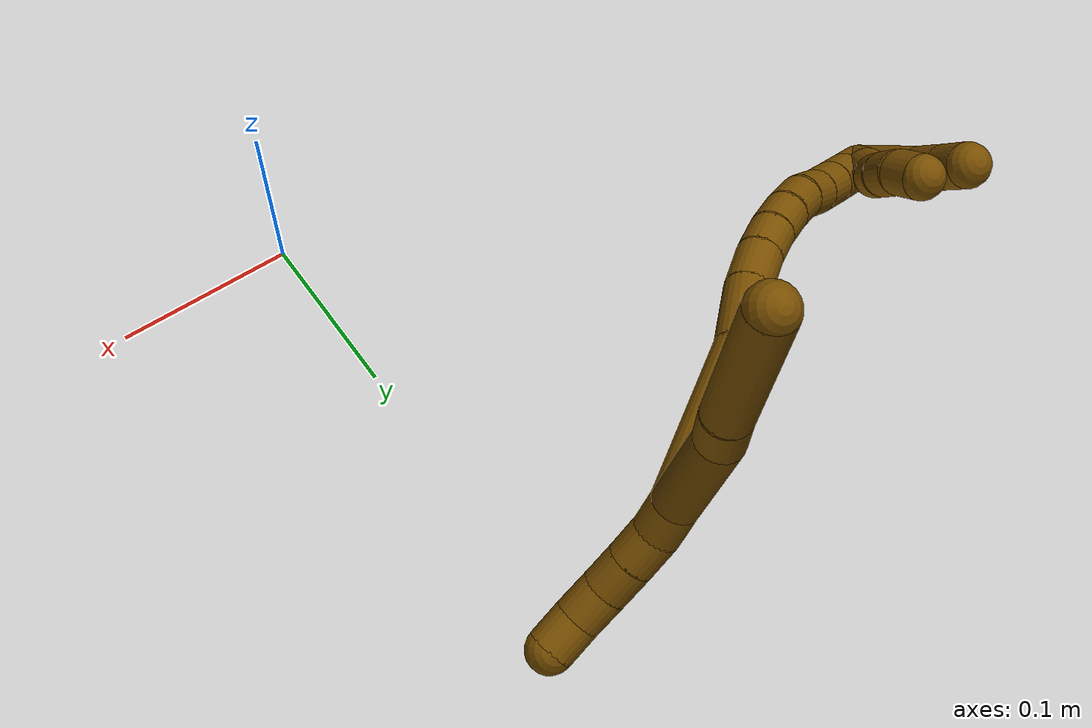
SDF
<sdf version="1.7">
 <world name="default">
  <model name="12">
   <static>0</static>
   <link name="12">
    <collision name="collision-cylinder-e_1_2_8">
     <pose>-0.01328 0.001871 -0.023569 -3.06236 -0.511749 2.84085</pose>
     <geometry><cylinder><radius>0.0125</radius><length>0.054235</length></cylinder></geometry>
     <surface>
      <friction><ode><mu>1.16</mu><mu2>1.16</mu2><slip1>0</slip1><slip2>0</slip2></ode></friction>
      <contact><ode><kp>1e+06</kp><kd>1</kd><max_vel>0</max_vel><min_depth>0.001</min_depth></ode></contact>
     </surface>
    </collision>
    <visual name="visual-cylinder-e_1_2_8">
     <pose>-0.01328 0.001871 -0.023569 -3.06236 -0.511749 2.84085</pose>
     <geometry><cylinder><radius>0.0125</radius><length>0.054235</length></cylinder></geometry>
     <material><ambient>0.466667 0.301961 0 1</ambient></material>
    </visual>
    <collision name="collision-cylinder-e_2_8_9">
     <pose>-0.030727 0.007073 -0.05656 -2.80184 -0.395142 1.72467</pose>
     <geometry><cylinder><radius>0.0125</radius><length>0.021653</length></cylinder></geometry>
     <surface>
      <friction><ode><mu>1.16</mu><mu2>1.16</mu2><slip1>0</slip1><slip2>0</slip2></ode></friction>
      <contact><ode><kp>1e+06</kp><kd>1</kd><max_vel>0</max_vel><min_depth>0.001</min_depth></ode></contact>
     </surface>
    </collision>
    <visual name="visual-cylinder-e_2_8_9">
     <pose>-0.030727 0.007073 -0.05656 -2.80184 -0.395142 1.72467</pose>
     <geometry><cylinder><radius>0.0125</radius><length>0.021653</length></cylinder></geometry>
     <material><ambient>0.466667 0.301961 0 1</ambient></material>
    </visual>
    <collision name="collision-cylinder-e_3_9_6">
     <pose>-0.051667 0.018719 -0.09796 -2.88717 -0.469717 2.15979</pose>
     <geometry><cylinder><radius>0.0125</radius><length>0.074112</length></cylinder></geometry>
     <surface>
      <friction><ode><mu>1.16</mu><mu2>1.16</mu2><slip1>0</slip1><slip2>0</slip2></ode></friction>
      <contact><ode><kp>1e+06</kp><kd>1</kd><max_vel>0</max_vel><min_depth>0.001</min_depth></ode></contact>
     </surface>
    </collision>
    <visual name="visual-cylinder-e_3_9_6">
     <pose>-0.051667 0.018719 -0.09796 -2.88717 -0.469717 2.15979</pose>
     <geometry><cylinder><radius>0.0125</radius><length>0.074112</length></cylinder></geometry>
     <material><ambient>0.466667 0.301961 0 1</ambient></material>
    </visual>
    <collision name="collision-cylinder-e_1_2_10">
     <pose>0.006962 0.000639 0.00715 -0.089165 0.770058 -0.036155</pose>
     <geometry><cylinder><radius>0.0125</radius><length>0.02</length></cylinder></geometry>
     <surface>
      <friction><ode><mu>1.16</mu><mu2>1.16</mu2><slip1>0</slip1><slip2>0</slip2></ode></friction>
      <contact><ode><kp>1e+06</kp><kd>1</kd><max_vel>0</max_vel><min_depth>0.001</min_depth></ode></contact>
     </surface>
    </collision>
    <visual name="visual-cylinder-e_1_2_10">
     <pose>0.006962 0.000639 0.00715 -0.089165 0.770058 -0.036155</pose>
     <geometry><cylinder><radius>0.0125</radius><length>0.02</length></cylinder></geometry>
     <material><ambient>0.466667 0.301961 0 1</ambient></material>
    </visual>
    <collision name="collision-cylinder-e_2_10_11">
     <pose>0.021445 0.004081 0.020265 -0.439279 0.851322 -0.201739</pose>
     <geometry><cylinder><radius>0.0125</radius><length>0.02</length></cylinder></geometry>
     <surface>
      <friction><ode><mu>1.16</mu><mu2>1.16</mu2><slip1>0</slip1><slip2>0</slip2></ode></friction>
      <contact><ode><kp>1e+06</kp><kd>1</kd><max_vel>0</max_vel><min_depth>0.001</min_depth></ode></contact>
     </surface>
    </collision>
    <visual name="visual-cylinder-e_2_10_11">
     <pose>0.021445 0.004081 0.020265 -0.439279 0.851322 -0.201739</pose>
     <geometry><cylinder><radius>0.0125</radius><length>0.02</length></cylinder></geometry>
     <material><ambient>0.466667 0.301961 0 1</ambient></material>
    </visual>
    <collision name="collision-cylinder-e_3_11_12">
     <pose>0.036414 0.009932 0.032165 -0.474462 0.840173 -0.215164</pose>
     <geometry><cylinder><radius>0.0125</radius><length>0.02</length></cylinder></geometry>
     <surface>
      <friction><ode><mu>1.16</mu><mu2>1.16</mu2><slip1>0</slip1><slip2>0</slip2></ode></friction>
      <contact><ode><kp>1e+06</kp><kd>1</kd><max_vel>0</max_vel><min_depth>0.001</min_depth></ode></contact>
     </surface>
    </collision>
    <visual name="visual-cylinder-e_3_11_12">
     <pose>0.036414 0.009932 0.032165 -0.474462 0.840173 -0.215164</pose>
     <geometry><cylinder><radius>0.0125</radius><length>0.02</length></cylinder></geometry>
     <material><ambient>0.466667 0.301961 0 1</ambient></material>
    </visual>
    <collision name="collision-cylinder-e_4_12_13">
     <pose>0.051802 0.016936 0.042718 -0.708283 0.91738 -0.36118</pose>
     <geometry><cylinder><radius>0.0125</radius><length>0.02</length></cylinder></geometry>
     <surface>
      <friction><ode><mu>1.16</mu><mu2>1.16</mu2><slip1>0</slip1><slip2>0</slip2></ode></friction>
      <contact><ode><kp>1e+06</kp><kd>1</kd><max_vel>0</max_vel><min_depth>0.001</min_depth></ode></contact>
     </surface>
    </collision>
    <visual name="visual-cylinder-e_4_12_13">
     <pose>0.051802 0.016936 0.042718 -0.708283 0.91738 -0.36118</pose>
     <geometry><cylinder><radius>0.0125</radius><length>0.02</length></cylinder></geometry>
     <material><ambient>0.466667 0.301961 0 1</ambient></material>
    </visual>
    <collision name="collision-cylinder-e_5_13_5">
     <pose>0.068189 0.02545 0.050137 -1.01983 1.00605 -0.597046</pose>
     <geometry><cylinder><radius>0.0125</radius><length>0.02</length></cylinder></geometry>
     <surface>
      <friction><ode><mu>1.16</mu><mu2>1.16</mu2><slip1>0</slip1><slip2>0</slip2></ode></friction>
      <contact><ode><kp>1e+06</kp><kd>1</kd><max_vel>0</max_vel><min_depth>0.001</min_depth></ode></contact>
     </surface>
    </collision>
    <visual name="visual-cylinder-e_5_13_5">
     <pose>0.068189 0.02545 0.050137 -1.01983 1.00605 -0.597046</pose>
     <geometry><cylinder><radius>0.0125</radius><length>0.02</length></cylinder></geometry>
     <material><ambient>0.466667 0.301961 0 1</ambient></material>
    </visual>
    <collision name="collision-cylinder-e_1_2_14">
     <pose>-0.041373 -0.013852 0.010172 0.937407 -1.1771 -0.651813</pose>
     <geometry><cylinder><radius>0.0125</radius><length>0.089602</length></cylinder></geometry>
     <surface>
      <friction><ode><mu>1.16</mu><mu2>1.16</mu2><slip1>0</slip1><slip2>0</slip2></ode></friction>
      <contact><ode><kp>1e+06</kp><kd>1</kd><max_vel>0</max_vel><min_depth>0.001</min_depth></ode></contact>
     </surface>
    </collision>
    <visual name="visual-cylinder-e_1_2_14">
     <pose>-0.041373 -0.013852 0.010172 0.937407 -1.1771 -0.651813</pose>
     <geometry><cylinder><radius>0.0125</radius><length>0.089602</length></cylinder></geometry>
     <material><ambient>0.466667 0.301961 0 1</ambient></material>
    </visual>
    <collision name="collision-cylinder-e_2_14_15">
     <pose>-0.100134 -0.032221 0.030793 0.407968 -0.991125 -0.222714</pose>
     <geometry><cylinder><radius>0.0125</radius><length>0.041563</length></cylinder></geometry>
     <surface>
      <friction><ode><mu>1.16</mu><mu2>1.16</mu2><slip1>0</slip1><slip2>0</slip2></ode></friction>
      <contact><ode><kp>1e+06</kp><kd>1</kd><max_vel>0</max_vel><min_depth>0.001</min_depth></ode></contact>
     </surface>
    </collision>
    <visual name="visual-cylinder-e_2_14_15">
     <pose>-0.100134 -0.032221 0.030793 0.407968 -0.991125 -0.222714</pose>
     <geometry><cylinder><radius>0.0125</radius><length>0.041563</length></cylinder></geometry>
     <material><ambient>0.466667 0.301961 0 1</ambient></material>
    </visual>
    <collision name="collision-cylinder-e_3_15_16">
     <pose>-0.128419 -0.040817 0.04675 0.63754 -1.00938 -0.360658</pose>
     <geometry><cylinder><radius>0.0125</radius><length>0.025751</length></cylinder></geometry>
     <surface>
      <friction><ode><mu>1.16</mu><mu2>1.16</mu2><slip1>0</slip1><slip2>0</slip2></ode></friction>
      <contact><ode><kp>1e+06</kp><kd>1</kd><max_vel>0</max_vel><min_depth>0.001</min_depth></ode></contact>
     </surface>
    </collision>
    <visual name="visual-cylinder-e_3_15_16">
     <pose>-0.128419 -0.040817 0.04675 0.63754 -1.00938 -0.360658</pose>
     <geometry><cylinder><radius>0.0125</radius><length>0.025751</length></cylinder></geometry>
     <material><ambient>0.466667 0.301961 0 1</ambient></material>
    </visual>
    <collision name="collision-cylinder-e_4_16_17">
     <pose>-0.147573 -0.049179 0.056524 0.787256 -0.938755 -0.415199</pose>
     <geometry><cylinder><radius>0.0125</radius><length>0.020462</length></cylinder></geometry>
     <surface>
      <friction><ode><mu>1.16</mu><mu2>1.16</mu2><slip1>0</slip1><slip2>0</slip2></ode></friction>
      <contact><ode><kp>1e+06</kp><kd>1</kd><max_vel>0</max_vel><min_depth>0.001</min_depth></ode></contact>
     </surface>
    </collision>
    <visual name="visual-cylinder-e_4_16_17">
     <pose>-0.147573 -0.049179 0.056524 0.787256 -0.938755 -0.415199</pose>
     <geometry><cylinder><radius>0.0125</radius><length>0.020462</length></cylinder></geometry>
     <material><ambient>0.466667 0.301961 0 1</ambient></material>
    </visual>
    <collision name="collision-cylinder-e_5_17_18">
     <pose>-0.163343 -0.058618 0.065445 0.836532 -0.824672 -0.384062</pose>
     <geometry><cylinder><radius>0.0125</radius><length>0.020469</length></cylinder></geometry>
     <surface>
      <friction><ode><mu>1.16</mu><mu2>1.16</mu2><slip1>0</slip1><slip2>0</slip2></ode></friction>
      <contact><ode><kp>1e+06</kp><kd>1</kd><max_vel>0</max_vel><min_depth>0.001</min_depth></ode></contact>
     </surface>
    </collision>
    <visual name="visual-cylinder-e_5_17_18">
     <pose>-0.163343 -0.058618 0.065445 0.836532 -0.824672 -0.384062</pose>
     <geometry><cylinder><radius>0.0125</radius><length>0.020469</length></cylinder></geometry>
     <material><ambient>0.466667 0.301961 0 1</ambient></material>
    </visual>
    <collision name="collision-cylinder-e_6_18_19">
     <pose>-0.17775 -0.069821 0.075529 0.839061 -0.703358 -0.324435</pose>
     <geometry><cylinder><radius>0.0125</radius><length>0.021311</length></cylinder></geometry>
     <surface>
      <friction><ode><mu>1.16</mu><mu2>1.16</mu2><slip1>0</slip1><slip2>0</slip2></ode></friction>
      <contact><ode><kp>1e+06</kp><kd>1</kd><max_vel>0</max_vel><min_depth>0.001</min_depth></ode></contact>
     </surface>
    </collision>
    <visual name="visual-cylinder-e_6_18_19">
     <pose>-0.17775 -0.069821 0.075529 0.839061 -0.703358 -0.324435</pose>
     <geometry><cylinder><radius>0.0125</radius><length>0.021311</length></cylinder></geometry>
     <material><ambient>0.466667 0.301961 0 1</ambient></material>
    </visual>
    <collision name="collision-cylinder-e_7_19_20">
     <pose>-0.189168 -0.082831 0.086594 0.890568 -0.46786 -0.226478</pose>
     <geometry><cylinder><radius>0.0125</radius><length>0.020073</length></cylinder></geometry>
     <surface>
      <friction><ode><mu>1.16</mu><mu2>1.16</mu2><slip1>0</slip1><slip2>0</slip2></ode></friction>
      <contact><ode><kp>1e+06</kp><kd>1</kd><max_vel>0</max_vel><min_depth>0.001</min_depth></ode></contact>
     </surface>
    </collision>
    <visual name="visual-cylinder-e_7_19_20">
     <pose>-0.189168 -0.082831 0.086594 0.890568 -0.46786 -0.226478</pose>
     <geometry><cylinder><radius>0.0125</radius><length>0.020073</length></cylinder></geometry>
     <material><ambient>0.466667 0.301961 0 1</ambient></material>
    </visual>
    <collision name="collision-cylinder-e_8_20_21">
     <pose>-0.199152 -0.096566 0.097589 0.901082 -0.563632 -0.278286</pose>
     <geometry><cylinder><radius>0.0125</radius><length>0.020432</length></cylinder></geometry>
     <surface>
      <friction><ode><mu>1.16</mu><mu2>1.16</mu2><slip1>0</slip1><slip2>0</slip2></ode></friction>
      <contact><ode><kp>1e+06</kp><kd>1</kd><max_vel>0</max_vel><min_depth>0.001</min_depth></ode></contact>
     </surface>
    </collision>
    <visual name="visual-cylinder-e_8_20_21">
     <pose>-0.199152 -0.096566 0.097589 0.901082 -0.563632 -0.278286</pose>
     <geometry><cylinder><radius>0.0125</radius><length>0.020432</length></cylinder></geometry>
     <material><ambient>0.466667 0.301961 0 1</ambient></material>
    </visual>
    <collision name="collision-cylinder-e_9_21_22">
     <pose>-0.209972 -0.109862 0.108322 0.881931 -0.565323 -0.272453</pose>
     <geometry><cylinder><radius>0.0125</radius><length>0.020019</length></cylinder></geometry>
     <surface>
      <friction><ode><mu>1.16</mu><mu2>1.16</mu2><slip1>0</slip1><slip2>0</slip2></ode></friction>
      <contact><ode><kp>1e+06</kp><kd>1</kd><max_vel>0</max_vel><min_depth>0.001</min_depth></ode></contact>
     </surface>
    </collision>
    <visual name="visual-cylinder-e_9_21_22">
     <pose>-0.209972 -0.109862 0.108322 0.881931 -0.565323 -0.272453</pose>
     <geometry><cylinder><radius>0.0125</radius><length>0.020019</length></cylinder></geometry>
     <material><ambient>0.466667 0.301961 0 1</ambient></material>
    </visual>
    <collision name="collision-cylinder-e_10_22_1">
     <pose>-0.220798 -0.122934 0.119216 0.870238 -0.567861 -0.269643</pose>
     <geometry><cylinder><radius>0.0125</radius><length>0.020319</length></cylinder></geometry>
     <surface>
      <friction><ode><mu>1.16</mu><mu2>1.16</mu2><slip1>0</slip1><slip2>0</slip2></ode></friction>
      <contact><ode><kp>1e+06</kp><kd>1</kd><max_vel>0</max_vel><min_depth>0.001</min_depth></ode></contact>
     </surface>
    </collision>
    <visual name="visual-cylinder-e_10_22_1">
     <pose>-0.220798 -0.122934 0.119216 0.870238 -0.567861 -0.269643</pose>
     <geometry><cylinder><radius>0.0125</radius><length>0.020319</length></cylinder></geometry>
     <material><ambient>0.466667 0.301961 0 1</ambient></material>
    </visual>
    <collision name="collision-cylinder-e_1_1_23">
     <pose>-0.222738 -0.127601 0.11557 -2.93927 0.360146 -2.12429</pose>
     <geometry><cylinder><radius>0.0125</radius><length>0.02</length></cylinder></geometry>
     <surface>
      <friction><ode><mu>1.16</mu><mu2>1.16</mu2><slip1>0</slip1><slip2>0</slip2></ode></friction>
      <contact><ode><kp>1e+06</kp><kd>1</kd><max_vel>0</max_vel><min_depth>0.001</min_depth></ode></contact>
     </surface>
    </collision>
    <visual name="visual-cylinder-e_1_1_23">
     <pose>-0.222738 -0.127601 0.11557 -2.93927 0.360146 -2.12429</pose>
     <geometry><cylinder><radius>0.0125</radius><length>0.02</length></cylinder></geometry>
     <material><ambient>0.466667 0.301961 0 1</ambient></material>
    </visual>
    <collision name="collision-cylinder-e_2_23_24">
     <pose>-0.214998 -0.124167 0.097469 -2.96941 0.435237 -2.39735</pose>
     <geometry><cylinder><radius>0.0125</radius><length>0.02</length></cylinder></geometry>
     <surface>
      <friction><ode><mu>1.16</mu><mu2>1.16</mu2><slip1>0</slip1><slip2>0</slip2></ode></friction>
      <contact><ode><kp>1e+06</kp><kd>1</kd><max_vel>0</max_vel><min_depth>0.001</min_depth></ode></contact>
     </surface>
    </collision>
    <visual name="visual-cylinder-e_2_23_24">
     <pose>-0.214998 -0.124167 0.097469 -2.96941 0.435237 -2.39735</pose>
     <geometry><cylinder><radius>0.0125</radius><length>0.02</length></cylinder></geometry>
     <material><ambient>0.466667 0.301961 0 1</ambient></material>
    </visual>
    <collision name="collision-cylinder-e_3_24_25">
     <pose>-0.20841 -0.120116 0.079147 -2.88157 0.239465 -1.48766</pose>
     <geometry><cylinder><radius>0.0125</radius><length>0.02</length></cylinder></geometry>
     <surface>
      <friction><ode><mu>1.16</mu><mu2>1.16</mu2><slip1>0</slip1><slip2>0</slip2></ode></friction>
      <contact><ode><kp>1e+06</kp><kd>1</kd><max_vel>0</max_vel><min_depth>0.001</min_depth></ode></contact>
     </surface>
    </collision>
    <visual name="visual-cylinder-e_3_24_25">
     <pose>-0.20841 -0.120116 0.079147 -2.88157 0.239465 -1.48766</pose>
     <geometry><cylinder><radius>0.0125</radius><length>0.02</length></cylinder></geometry>
     <material><ambient>0.466667 0.301961 0 1</ambient></material>
    </visual>
    <collision name="collision-cylinder-e_4_25_26">
     <pose>-0.204269 -0.116745 0.059956 -3.05273 0.177862 -2.21651</pose>
     <geometry><cylinder><radius>0.0125</radius><length>0.02</length></cylinder></geometry>
     <surface>
      <friction><ode><mu>1.16</mu><mu2>1.16</mu2><slip1>0</slip1><slip2>0</slip2></ode></friction>
      <contact><ode><kp>1e+06</kp><kd>1</kd><max_vel>0</max_vel><min_depth>0.001</min_depth></ode></contact>
     </surface>
    </collision>
    <visual name="visual-cylinder-e_4_25_26">
     <pose>-0.204269 -0.116745 0.059956 -3.05273 0.177862 -2.21651</pose>
     <geometry><cylinder><radius>0.0125</radius><length>0.02</length></cylinder></geometry>
     <material><ambient>0.466667 0.301961 0 1</ambient></material>
    </visual>
    <collision name="collision-cylinder-e_5_26_4">
     <pose>-0.199483 -0.117653 0.040786 2.95361 0.306404 2.04537</pose>
     <geometry><cylinder><radius>0.0125</radius><length>0.02</length></cylinder></geometry>
     <surface>
      <friction><ode><mu>1.16</mu><mu2>1.16</mu2><slip1>0</slip1><slip2>0</slip2></ode></friction>
      <contact><ode><kp>1e+06</kp><kd>1</kd><max_vel>0</max_vel><min_depth>0.001</min_depth></ode></contact>
     </surface>
    </collision>
    <visual name="visual-cylinder-e_5_26_4">
     <pose>-0.199483 -0.117653 0.040786 2.95361 0.306404 2.04537</pose>
     <geometry><cylinder><radius>0.0125</radius><length>0.02</length></cylinder></geometry>
     <material><ambient>0.466667 0.301961 0 1</ambient></material>
    </visual>
    <collision name="collision-cylinder-e_1_1_27">
     <pose>-0.222591 -0.136905 0.10267 2.81709 0.156405 0.89297</pose>
     <geometry><cylinder><radius>0.0125</radius><length>0.047142</length></cylinder></geometry>
     <surface>
      <friction><ode><mu>1.16</mu><mu2>1.16</mu2><slip1>0</slip1><slip2>0</slip2></ode></friction>
      <contact><ode><kp>1e+06</kp><kd>1</kd><max_vel>0</max_vel><min_depth>0.001</min_depth></ode></contact>
     </surface>
    </collision>
    <visual name="visual-cylinder-e_1_1_27">
     <pose>-0.222591 -0.136905 0.10267 2.81709 0.156405 0.89297</pose>
     <geometry><cylinder><radius>0.0125</radius><length>0.047142</length></cylinder></geometry>
     <material><ambient>0.466667 0.301961 0 1</ambient></material>
    </visual>
    <collision name="collision-cylinder-e_2_27_28">
     <pose>-0.216233 -0.144401 0.066912 3.13634 0.193731 3.08758</pose>
     <geometry><cylinder><radius>0.0125</radius><length>0.027902</length></cylinder></geometry>
     <surface>
      <friction><ode><mu>1.16</mu><mu2>1.16</mu2><slip1>0</slip1><slip2>0</slip2></ode></friction>
      <contact><ode><kp>1e+06</kp><kd>1</kd><max_vel>0</max_vel><min_depth>0.001</min_depth></ode></contact>
     </surface>
    </collision>
    <visual name="visual-cylinder-e_2_27_28">
     <pose>-0.216233 -0.144401 0.066912 3.13634 0.193731 3.08758</pose>
     <geometry><cylinder><radius>0.0125</radius><length>0.027902</length></cylinder></geometry>
     <material><ambient>0.466667 0.301961 0 1</ambient></material>
    </visual>
    <collision name="collision-cylinder-e_3_28_3">
     <pose>-0.211139 -0.143989 0.040988 -3.10209 0.194251 -2.74152</pose>
     <geometry><cylinder><radius>0.0125</radius><length>0.024957</length></cylinder></geometry>
     <surface>
      <friction><ode><mu>1.16</mu><mu2>1.16</mu2><slip1>0</slip1><slip2>0</slip2></ode></friction>
      <contact><ode><kp>1e+06</kp><kd>1</kd><max_vel>0</max_vel><min_depth>0.001</min_depth></ode></contact>
     </surface>
    </collision>
    <visual name="visual-cylinder-e_3_28_3">
     <pose>-0.211139 -0.143989 0.040988 -3.10209 0.194251 -2.74152</pose>
     <geometry><cylinder><radius>0.0125</radius><length>0.024957</length></cylinder></geometry>
     <material><ambient>0.466667 0.301961 0 1</ambient></material>
    </visual>
    <collision name="collision-sphere-3">
     <pose>-0.20873 -0.143505 0.028754 0 -0 0</pose>
     <geometry><sphere><radius>0.0125</radius></sphere></geometry>
     <surface>
      <friction><ode><mu>1.16</mu><mu2>1.16</mu2><slip1>0</slip1><slip2>0</slip2></ode></friction>
      <contact><ode><kp>1e+06</kp><kd>1</kd><max_vel>0</max_vel><min_depth>0.001</min_depth></ode></contact>
     </surface>
    </collision>
    <visual name="visual-sphere-3">
     <pose>-0.20873 -0.143505 0.028754 0 -0 0</pose>
     <geometry><sphere><radius>0.0125</radius></sphere></geometry>
     <material><ambient>0.466667 0.301961 0 1</ambient></material>
    </visual>
    <collision name="collision-sphere-28">
     <pose>-0.213547 -0.144472 0.053222 0 -0 0</pose>
     <geometry><sphere><radius>0.0125</radius></sphere></geometry>
     <surface>
      <friction><ode><mu>1.16</mu><mu2>1.16</mu2><slip1>0</slip1><slip2>0</slip2></ode></friction>
      <contact><ode><kp>1e+06</kp><kd>1</kd><max_vel>0</max_vel><min_depth>0.001</min_depth></ode></contact>
     </surface>
    </collision>
    <visual name="visual-sphere-28">
     <pose>-0.213547 -0.144472 0.053222 0 -0 0</pose>
     <geometry><sphere><radius>0.0125</radius></sphere></geometry>
     <material><ambient>0.466667 0.301961 0 1</ambient></material>
    </visual>
    <collision name="collision-sphere-27">
     <pose>-0.218919 -0.144329 0.080602 0 -0 0</pose>
     <geometry><sphere><radius>0.0125</radius></sphere></geometry>
     <surface>
      <friction><ode><mu>1.16</mu><mu2>1.16</mu2><slip1>0</slip1><slip2>0</slip2></ode></friction>
      <contact><ode><kp>1e+06</kp><kd>1</kd><max_vel>0</max_vel><min_depth>0.001</min_depth></ode></contact>
     </surface>
    </collision>
    <visual name="visual-sphere-27">
     <pose>-0.218919 -0.144329 0.080602 0 -0 0</pose>
     <geometry><sphere><radius>0.0125</radius></sphere></geometry>
     <material><ambient>0.466667 0.301961 0 1</ambient></material>
    </visual>
    <collision name="collision-sphere-4">
     <pose>-0.196467 -0.119435 0.03142 0 -0 0</pose>
     <geometry><sphere><radius>0.0125</radius></sphere></geometry>
     <surface>
      <friction><ode><mu>1.16</mu><mu2>1.16</mu2><slip1>0</slip1><slip2>0</slip2></ode></friction>
      <contact><ode><kp>1e+06</kp><kd>1</kd><max_vel>0</max_vel><min_depth>0.001</min_depth></ode></contact>
     </surface>
    </collision>
    <visual name="visual-sphere-4">
     <pose>-0.196467 -0.119435 0.03142 0 -0 0</pose>
     <geometry><sphere><radius>0.0125</radius></sphere></geometry>
     <material><ambient>0.466667 0.301961 0 1</ambient></material>
    </visual>
    <collision name="collision-sphere-26">
     <pose>-0.202499 -0.115871 0.050152 0 -0 0</pose>
     <geometry><sphere><radius>0.0125</radius></sphere></geometry>
     <surface>
      <friction><ode><mu>1.16</mu><mu2>1.16</mu2><slip1>0</slip1><slip2>0</slip2></ode></friction>
      <contact><ode><kp>1e+06</kp><kd>1</kd><max_vel>0</max_vel><min_depth>0.001</min_depth></ode></contact>
     </surface>
    </collision>
    <visual name="visual-sphere-26">
     <pose>-0.202499 -0.115871 0.050152 0 -0 0</pose>
     <geometry><sphere><radius>0.0125</radius></sphere></geometry>
     <material><ambient>0.466667 0.301961 0 1</ambient></material>
    </visual>
    <collision name="collision-sphere-25">
     <pose>-0.206038 -0.117618 0.069759 0 -0 0</pose>
     <geometry><sphere><radius>0.0125</radius></sphere></geometry>
     <surface>
      <friction><ode><mu>1.16</mu><mu2>1.16</mu2><slip1>0</slip1><slip2>0</slip2></ode></friction>
      <contact><ode><kp>1e+06</kp><kd>1</kd><max_vel>0</max_vel><min_depth>0.001</min_depth></ode></contact>
     </surface>
    </collision>
    <visual name="visual-sphere-25">
     <pose>-0.206038 -0.117618 0.069759 0 -0 0</pose>
     <geometry><sphere><radius>0.0125</radius></sphere></geometry>
     <material><ambient>0.466667 0.301961 0 1</ambient></material>
    </visual>
    <collision name="collision-sphere-24">
     <pose>-0.210782 -0.122614 0.088535 0 -0 0</pose>
     <geometry><sphere><radius>0.0125</radius></sphere></geometry>
     <surface>
      <friction><ode><mu>1.16</mu><mu2>1.16</mu2><slip1>0</slip1><slip2>0</slip2></ode></friction>
      <contact><ode><kp>1e+06</kp><kd>1</kd><max_vel>0</max_vel><min_depth>0.001</min_depth></ode></contact>
     </surface>
    </collision>
    <visual name="visual-sphere-24">
     <pose>-0.210782 -0.122614 0.088535 0 -0 0</pose>
     <geometry><sphere><radius>0.0125</radius></sphere></geometry>
     <material><ambient>0.466667 0.301961 0 1</ambient></material>
    </visual>
    <collision name="collision-sphere-23">
     <pose>-0.219214 -0.125721 0.106403 0 -0 0</pose>
     <geometry><sphere><radius>0.0125</radius></sphere></geometry>
     <surface>
      <friction><ode><mu>1.16</mu><mu2>1.16</mu2><slip1>0</slip1><slip2>0</slip2></ode></friction>
      <contact><ode><kp>1e+06</kp><kd>1</kd><max_vel>0</max_vel><min_depth>0.001</min_depth></ode></contact>
     </surface>
    </collision>
    <visual name="visual-sphere-23">
     <pose>-0.219214 -0.125721 0.106403 0 -0 0</pose>
     <geometry><sphere><radius>0.0125</radius></sphere></geometry>
     <material><ambient>0.466667 0.301961 0 1</ambient></material>
    </visual>
    <collision name="collision-sphere-1">
     <pose>-0.226262 -0.129482 0.124738 0 -0 0</pose>
     <geometry><sphere><radius>0.0125</radius></sphere></geometry>
     <surface>
      <friction><ode><mu>1.16</mu><mu2>1.16</mu2><slip1>0</slip1><slip2>0</slip2></ode></friction>
      <contact><ode><kp>1e+06</kp><kd>1</kd><max_vel>0</max_vel><min_depth>0.001</min_depth></ode></contact>
     </surface>
    </collision>
    <visual name="visual-sphere-1">
     <pose>-0.226262 -0.129482 0.124738 0 -0 0</pose>
     <geometry><sphere><radius>0.0125</radius></sphere></geometry>
     <material><ambient>0.466667 0.301961 0 1</ambient></material>
    </visual>
    <collision name="collision-sphere-22">
     <pose>-0.215334 -0.116386 0.113695 0 -0 0</pose>
     <geometry><sphere><radius>0.0125</radius></sphere></geometry>
     <surface>
      <friction><ode><mu>1.16</mu><mu2>1.16</mu2><slip1>0</slip1><slip2>0</slip2></ode></friction>
      <contact><ode><kp>1e+06</kp><kd>1</kd><max_vel>0</max_vel><min_depth>0.001</min_depth></ode></contact>
     </surface>
    </collision>
    <visual name="visual-sphere-22">
     <pose>-0.215334 -0.116386 0.113695 0 -0 0</pose>
     <geometry><sphere><radius>0.0125</radius></sphere></geometry>
     <material><ambient>0.466667 0.301961 0 1</ambient></material>
    </visual>
    <collision name="collision-sphere-21">
     <pose>-0.20461 -0.103337 0.10295 0 -0 0</pose>
     <geometry><sphere><radius>0.0125</radius></sphere></geometry>
     <surface>
      <friction><ode><mu>1.16</mu><mu2>1.16</mu2><slip1>0</slip1><slip2>0</slip2></ode></friction>
      <contact><ode><kp>1e+06</kp><kd>1</kd><max_vel>0</max_vel><min_depth>0.001</min_depth></ode></contact>
     </surface>
    </collision>
    <visual name="visual-sphere-21">
     <pose>-0.20461 -0.103337 0.10295 0 -0 0</pose>
     <geometry><sphere><radius>0.0125</radius></sphere></geometry>
     <material><ambient>0.466667 0.301961 0 1</ambient></material>
    </visual>
    <collision name="collision-sphere-11">
     <pose>0.028967 0.006884 0.026229 0 -0 0</pose>
     <geometry><sphere><radius>0.0125</radius></sphere></geometry>
     <surface>
      <friction><ode><mu>1.16</mu><mu2>1.16</mu2><slip1>0</slip1><slip2>0</slip2></ode></friction>
      <contact><ode><kp>1e+06</kp><kd>1</kd><max_vel>0</max_vel><min_depth>0.001</min_depth></ode></contact>
     </surface>
    </collision>
    <visual name="visual-sphere-11">
     <pose>0.028967 0.006884 0.026229 0 -0 0</pose>
     <geometry><sphere><radius>0.0125</radius></sphere></geometry>
     <material><ambient>0.466667 0.301961 0 1</ambient></material>
    </visual>
    <collision name="collision-sphere-10">
     <pose>0.013924 0.001278 0.0143 0 -0 0</pose>
     <geometry><sphere><radius>0.0125</radius></sphere></geometry>
     <surface>
      <friction><ode><mu>1.16</mu><mu2>1.16</mu2><slip1>0</slip1><slip2>0</slip2></ode></friction>
      <contact><ode><kp>1e+06</kp><kd>1</kd><max_vel>0</max_vel><min_depth>0.001</min_depth></ode></contact>
     </surface>
    </collision>
    <visual name="visual-sphere-10">
     <pose>0.013924 0.001278 0.0143 0 -0 0</pose>
     <geometry><sphere><radius>0.0125</radius></sphere></geometry>
     <material><ambient>0.466667 0.301961 0 1</ambient></material>
    </visual>
    <collision name="collision-sphere-6">
     <pose>-0.06844 0.027036 -0.129939 0 -0 0</pose>
     <geometry><sphere><radius>0.0125</radius></sphere></geometry>
     <surface>
      <friction><ode><mu>1.16</mu><mu2>1.16</mu2><slip1>0</slip1><slip2>0</slip2></ode></friction>
      <contact><ode><kp>1e+06</kp><kd>1</kd><max_vel>0</max_vel><min_depth>0.001</min_depth></ode></contact>
     </surface>
    </collision>
    <visual name="visual-sphere-6">
     <pose>-0.06844 0.027036 -0.129939 0 -0 0</pose>
     <geometry><sphere><radius>0.0125</radius></sphere></geometry>
     <material><ambient>0.466667 0.301961 0 1</ambient></material>
    </visual>
    <collision name="collision-sphere-9">
     <pose>-0.034894 0.010403 -0.06598 0 -0 0</pose>
     <geometry><sphere><radius>0.0125</radius></sphere></geometry>
     <surface>
      <friction><ode><mu>1.16</mu><mu2>1.16</mu2><slip1>0</slip1><slip2>0</slip2></ode></friction>
      <contact><ode><kp>1e+06</kp><kd>1</kd><max_vel>0</max_vel><min_depth>0.001</min_depth></ode></contact>
     </surface>
    </collision>
    <visual name="visual-sphere-9">
     <pose>-0.034894 0.010403 -0.06598 0 -0 0</pose>
     <geometry><sphere><radius>0.0125</radius></sphere></geometry>
     <material><ambient>0.466667 0.301961 0 1</ambient></material>
    </visual>
    <collision name="collision-sphere-2">
     <geometry><sphere><radius>0.0125</radius></sphere></geometry>
     <surface>
      <friction><ode><mu>1.16</mu><mu2>1.16</mu2><slip1>0</slip1><slip2>0</slip2></ode></friction>
      <contact><ode><kp>1e+06</kp><kd>1</kd><max_vel>0</max_vel><min_depth>0.001</min_depth></ode></contact>
     </surface>
    </collision>
    <visual name="visual-sphere-2">
     <geometry><sphere><radius>0.0125</radius></sphere></geometry>
     <material><ambient>0.466667 0.301961 0 1</ambient></material>
    </visual>
    <collision name="collision-sphere-19">
     <pose>-0.184642 -0.075867 0.080959 0 -0 0</pose>
     <geometry><sphere><radius>0.0125</radius></sphere></geometry>
     <surface>
      <friction><ode><mu>1.16</mu><mu2>1.16</mu2><slip1>0</slip1><slip2>0</slip2></ode></friction>
      <contact><ode><kp>1e+06</kp><kd>1</kd><max_vel>0</max_vel><min_depth>0.001</min_depth></ode></contact>
     </surface>
    </collision>
    <visual name="visual-sphere-19">
     <pose>-0.184642 -0.075867 0.080959 0 -0 0</pose>
     <geometry><sphere><radius>0.0125</radius></sphere></geometry>
     <material><ambient>0.466667 0.301961 0 1</ambient></material>
    </visual>
    <collision name="collision-sphere-8">
     <pose>-0.026559 0.003743 -0.047139 0 -0 0</pose>
     <geometry><sphere><radius>0.0125</radius></sphere></geometry>
     <surface>
      <friction><ode><mu>1.16</mu><mu2>1.16</mu2><slip1>0</slip1><slip2>0</slip2></ode></friction>
      <contact><ode><kp>1e+06</kp><kd>1</kd><max_vel>0</max_vel><min_depth>0.001</min_depth></ode></contact>
     </surface>
    </collision>
    <visual name="visual-sphere-8">
     <pose>-0.026559 0.003743 -0.047139 0 -0 0</pose>
     <geometry><sphere><radius>0.0125</radius></sphere></geometry>
     <material><ambient>0.466667 0.301961 0 1</ambient></material>
    </visual>
    <collision name="collision-sphere-12">
     <pose>0.043862 0.012981 0.038101 0 -0 0</pose>
     <geometry><sphere><radius>0.0125</radius></sphere></geometry>
     <surface>
      <friction><ode><mu>1.16</mu><mu2>1.16</mu2><slip1>0</slip1><slip2>0</slip2></ode></friction>
      <contact><ode><kp>1e+06</kp><kd>1</kd><max_vel>0</max_vel><min_depth>0.001</min_depth></ode></contact>
     </surface>
    </collision>
    <visual name="visual-sphere-12">
     <pose>0.043862 0.012981 0.038101 0 -0 0</pose>
     <geometry><sphere><radius>0.0125</radius></sphere></geometry>
     <material><ambient>0.466667 0.301961 0 1</ambient></material>
    </visual>
    <collision name="collision-sphere-13">
     <pose>0.059742 0.02089 0.047335 0 -0 0</pose>
     <geometry><sphere><radius>0.0125</radius></sphere></geometry>
     <surface>
      <friction><ode><mu>1.16</mu><mu2>1.16</mu2><slip1>0</slip1><slip2>0</slip2></ode></friction>
      <contact><ode><kp>1e+06</kp><kd>1</kd><max_vel>0</max_vel><min_depth>0.001</min_depth></ode></contact>
     </surface>
    </collision>
    <visual name="visual-sphere-13">
     <pose>0.059742 0.02089 0.047335 0 -0 0</pose>
     <geometry><sphere><radius>0.0125</radius></sphere></geometry>
     <material><ambient>0.466667 0.301961 0 1</ambient></material>
    </visual>
    <collision name="collision-sphere-5">
     <pose>0.076636 0.030011 0.052939 0 -0 0</pose>
     <geometry><sphere><radius>0.0125</radius></sphere></geometry>
     <surface>
      <friction><ode><mu>1.16</mu><mu2>1.16</mu2><slip1>0</slip1><slip2>0</slip2></ode></friction>
      <contact><ode><kp>1e+06</kp><kd>1</kd><max_vel>0</max_vel><min_depth>0.001</min_depth></ode></contact>
     </surface>
    </collision>
    <visual name="visual-sphere-5">
     <pose>0.076636 0.030011 0.052939 0 -0 0</pose>
     <geometry><sphere><radius>0.0125</radius></sphere></geometry>
     <material><ambient>0.466667 0.301961 0 1</ambient></material>
    </visual>
    <collision name="collision-sphere-14">
     <pose>-0.082747 -0.027704 0.020344 0 -0 0</pose>
     <geometry><sphere><radius>0.0125</radius></sphere></geometry>
     <surface>
      <friction><ode><mu>1.16</mu><mu2>1.16</mu2><slip1>0</slip1><slip2>0</slip2></ode></friction>
      <contact><ode><kp>1e+06</kp><kd>1</kd><max_vel>0</max_vel><min_depth>0.001</min_depth></ode></contact>
     </surface>
    </collision>
    <visual name="visual-sphere-14">
     <pose>-0.082747 -0.027704 0.020344 0 -0 0</pose>
     <geometry><sphere><radius>0.0125</radius></sphere></geometry>
     <material><ambient>0.466667 0.301961 0 1</ambient></material>
    </visual>
    <collision name="collision-sphere-15">
     <pose>-0.11752 -0.036737 0.041242 0 -0 0</pose>
     <geometry><sphere><radius>0.0125</radius></sphere></geometry>
     <surface>
      <friction><ode><mu>1.16</mu><mu2>1.16</mu2><slip1>0</slip1><slip2>0</slip2></ode></friction>
      <contact><ode><kp>1e+06</kp><kd>1</kd><max_vel>0</max_vel><min_depth>0.001</min_depth></ode></contact>
     </surface>
    </collision>
    <visual name="visual-sphere-15">
     <pose>-0.11752 -0.036737 0.041242 0 -0 0</pose>
     <geometry><sphere><radius>0.0125</radius></sphere></geometry>
     <material><ambient>0.466667 0.301961 0 1</ambient></material>
    </visual>
    <collision name="collision-sphere-16">
     <pose>-0.139318 -0.044897 0.052258 0 -0 0</pose>
     <geometry><sphere><radius>0.0125</radius></sphere></geometry>
     <surface>
      <friction><ode><mu>1.16</mu><mu2>1.16</mu2><slip1>0</slip1><slip2>0</slip2></ode></friction>
      <contact><ode><kp>1e+06</kp><kd>1</kd><max_vel>0</max_vel><min_depth>0.001</min_depth></ode></contact>
     </surface>
    </collision>
    <visual name="visual-sphere-16">
     <pose>-0.139318 -0.044897 0.052258 0 -0 0</pose>
     <geometry><sphere><radius>0.0125</radius></sphere></geometry>
     <material><ambient>0.466667 0.301961 0 1</ambient></material>
    </visual>
    <collision name="collision-sphere-17">
     <pose>-0.155827 -0.053461 0.06079 0 -0 0</pose>
     <geometry><sphere><radius>0.0125</radius></sphere></geometry>
     <surface>
      <friction><ode><mu>1.16</mu><mu2>1.16</mu2><slip1>0</slip1><slip2>0</slip2></ode></friction>
      <contact><ode><kp>1e+06</kp><kd>1</kd><max_vel>0</max_vel><min_depth>0.001</min_depth></ode></contact>
     </surface>
    </collision>
    <visual name="visual-sphere-17">
     <pose>-0.155827 -0.053461 0.06079 0 -0 0</pose>
     <geometry><sphere><radius>0.0125</radius></sphere></geometry>
     <material><ambient>0.466667 0.301961 0 1</ambient></material>
    </visual>
    <collision name="collision-sphere-18">
     <pose>-0.170858 -0.063775 0.0701 0 -0 0</pose>
     <geometry><sphere><radius>0.0125</radius></sphere></geometry>
     <surface>
      <friction><ode><mu>1.16</mu><mu2>1.16</mu2><slip1>0</slip1><slip2>0</slip2></ode></friction>
      <contact><ode><kp>1e+06</kp><kd>1</kd><max_vel>0</max_vel><min_depth>0.001</min_depth></ode></contact>
     </surface>
    </collision>
    <visual name="visual-sphere-18">
     <pose>-0.170858 -0.063775 0.0701 0 -0 0</pose>
     <geometry><sphere><radius>0.0125</radius></sphere></geometry>
     <material><ambient>0.466667 0.301961 0 1</ambient></material>
    </visual>
    <collision name="collision-sphere-20">
     <pose>-0.193694 -0.089796 0.092228 0 -0 0</pose>
     <geometry><sphere><radius>0.0125</radius></sphere></geometry>
     <surface>
      <friction><ode><mu>1.16</mu><mu2>1.16</mu2><slip1>0</slip1><slip2>0</slip2></ode></friction>
      <contact><ode><kp>1e+06</kp><kd>1</kd><max_vel>0</max_vel><min_depth>0.001</min_depth></ode></contact>
     </surface>
    </collision>
    <visual name="visual-sphere-20">
     <pose>-0.193694 -0.089796 0.092228 0 -0 0</pose>
     <geometry><sphere><radius>0.0125</radius></sphere></geometry>
     <material><ambient>0.466667 0.301961 0 1</ambient></material>
    </visual>
    <inertial>
     <pose>-0.109594 -0.052104 0.032931 0 -0 0</pose>
     <mass>0.75</mass>
     <inertia><ixx>8e-06</ixx><ixy>0</ixy><ixz>0</ixz><iyy>0.000135</iyy><iyz>0</iyz><izz>9.6e-05</izz></inertia>
    </inertial>
   </link>
   <pose>-0.059281 0.281811 0.081482 2.7522 0.375624 0.773586</pose>
  </model>
 </world>
</sdf>
